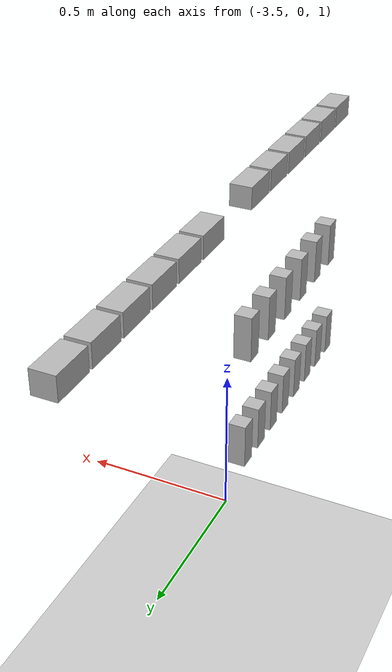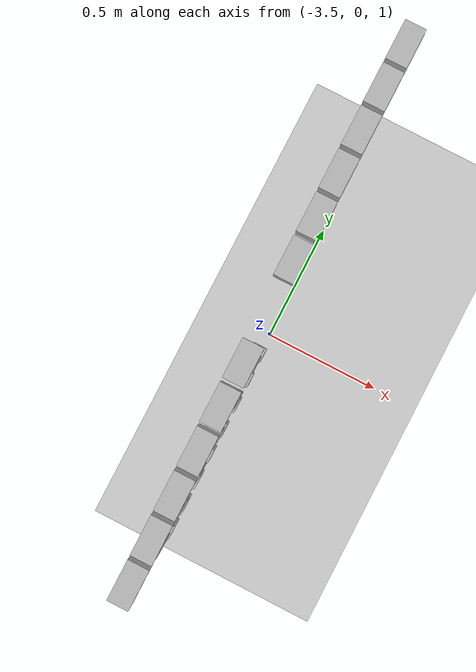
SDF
<sdf version="1.7">
 <world name="default">
  <model name="ground_plane">
   <static>1</static>
   <link name="link">
    <collision name="collision">
     <geometry><plane><normal>0 0 1</normal><size>100 100</size></plane></geometry>
     <surface>
      <contact><collide_bitmask>65535</collide_bitmask></contact>
      <friction><ode><mu>100</mu><mu2>50</mu2></ode></friction>
     </surface>
    </collision>
    <visual name="visual">
     <cast_shadows>0</cast_shadows>
     <geometry><plane><normal>0 0 1</normal><size>100 100</size></plane></geometry>
     <material>
      <script><uri>file://media/materials/scripts/gazebo.material</uri><name>Gazebo/Grey</name></script>
     </material>
    </visual>
   </link>
  </model>
  <model name="AH_shelf_filled_april">
   <static>1</static>
   <model name="board0">
    <pose>0 0.5 2.1 0 -0 0</pose>
    <static>0</static>
    <link name="AH_thee_mango_tag36_11_00030::link_0">
     <inertial>
      <mass>0.1</mass>
      <inertia><ixx>0.0014</ixx><ixy>0</ixy><ixz>0</ixz><iyy>0.0014</iyy><iyz>0</iyz><izz>0.0028</izz></inertia>
     </inertial>
     <pose>0.142857 0 0 0 -0 1.57</pose>
     <visual name="visual">
      <geometry>
       <mesh>
        <uri>model://AH_thee_mango/AH_thee_mango_tag36_11_00030/AH_thee_mango_tag36_11_00030.dae</uri>
        <scale>1 1 1</scale>
       </mesh>
      </geometry>
     </visual>
     <collision name="collision">
      <geometry>
       <mesh>
        <uri>model://AH_thee_mango/AH_thee_mango_tag36_11_00030/AH_thee_mango_tag36_11_00030.dae</uri>
        <scale>1 1 1</scale>
       </mesh>
      </geometry>
      <surface>
       <friction>
        <ode><mu>1</mu><mu2>1</mu2><fdir1>0 0 0</fdir1><slip1>0</slip1><slip2>0</slip2></ode>
        <torsional>
         <coefficient>1</coefficient>
         <patch_radius>0</patch_radius>
         <surface_radius>0</surface_radius>
         <use_patch_radius>1</use_patch_radius>
         <ode><slip>0</slip></ode>
        </torsional>
       </friction>
       <bounce><restitution_coefficient>0</restitution_coefficient><threshold>1e+06</threshold></bounce>
       <contact>
        <collide_without_contact>0</collide_without_contact>
        <collide_without_contact_bitmask>1</collide_without_contact_bitmask>
        <collide_bitmask>1</collide_bitmask>
        <ode>
         <soft_cfm>0</soft_cfm>
         <soft_erp>0.2</soft_erp>
         <kp>1e+13</kp>
         <kd>1</kd>
         <max_vel>0.01</max_vel>
         <min_depth>0</min_depth>
        </ode>
        <bullet>
         <split_impulse>1</split_impulse>
         <split_impulse_penetration_threshold>-0.01</split_impulse_penetration_threshold>
         <soft_cfm>0</soft_cfm>
         <soft_erp>0.2</soft_erp>
         <kp>1e+13</kp>
         <kd>1</kd>
        </bullet>
       </contact>
      </surface>
     </collision>
    </link>
    <static>0</static>
    <link name="AH_thee_mango_tag36_11_00031::link_0">
     <inertial>
      <mass>0.1</mass>
      <inertia><ixx>0.0014</ixx><ixy>0</ixy><ixz>0</ixz><iyy>0.0014</iyy><iyz>0</iyz><izz>0.0028</izz></inertia>
     </inertial>
     <pose>0.285714 0 0 0 -0 1.57</pose>
     <visual name="visual">
      <geometry>
       <mesh>
        <uri>model://AH_thee_mango/AH_thee_mango_tag36_11_00031/AH_thee_mango_tag36_11_00031.dae</uri>
        <scale>1 1 1</scale>
       </mesh>
      </geometry>
     </visual>
     <collision name="collision">
      <geometry>
       <mesh>
        <uri>model://AH_thee_mango/AH_thee_mango_tag36_11_00031/AH_thee_mango_tag36_11_00031.dae</uri>
        <scale>1 1 1</scale>
       </mesh>
      </geometry>
      <surface>
       <friction>
        <ode><mu>1</mu><mu2>1</mu2><fdir1>0 0 0</fdir1><slip1>0</slip1><slip2>0</slip2></ode>
        <torsional>
         <coefficient>1</coefficient>
         <patch_radius>0</patch_radius>
         <surface_radius>0</surface_radius>
         <use_patch_radius>1</use_patch_radius>
         <ode><slip>0</slip></ode>
        </torsional>
       </friction>
       <bounce><restitution_coefficient>0</restitution_coefficient><threshold>1e+06</threshold></bounce>
       <contact>
        <collide_without_contact>0</collide_without_contact>
        <collide_without_contact_bitmask>1</collide_without_contact_bitmask>
        <collide_bitmask>1</collide_bitmask>
        <ode>
         <soft_cfm>0</soft_cfm>
         <soft_erp>0.2</soft_erp>
         <kp>1e+13</kp>
         <kd>1</kd>
         <max_vel>0.01</max_vel>
         <min_depth>0</min_depth>
        </ode>
        <bullet>
         <split_impulse>1</split_impulse>
         <split_impulse_penetration_threshold>-0.01</split_impulse_penetration_threshold>
         <soft_cfm>0</soft_cfm>
         <soft_erp>0.2</soft_erp>
         <kp>1e+13</kp>
         <kd>1</kd>
        </bullet>
       </contact>
      </surface>
     </collision>
    </link>
    <static>0</static>
    <link name="AH_thee_mango_tag36_11_00032::link_0">
     <inertial>
      <mass>0.1</mass>
      <inertia><ixx>0.0014</ixx><ixy>0</ixy><ixz>0</ixz><iyy>0.0014</iyy><iyz>0</iyz><izz>0.0028</izz></inertia>
     </inertial>
     <pose>0.428571 0 0 0 -0 1.57</pose>
     <visual name="visual">
      <geometry>
       <mesh>
        <uri>model://AH_thee_mango/AH_thee_mango_tag36_11_00032/AH_thee_mango_tag36_11_00032.dae</uri>
        <scale>1 1 1</scale>
       </mesh>
      </geometry>
     </visual>
     <collision name="collision">
      <geometry>
       <mesh>
        <uri>model://AH_thee_mango/AH_thee_mango_tag36_11_00032/AH_thee_mango_tag36_11_00032.dae</uri>
        <scale>1 1 1</scale>
       </mesh>
      </geometry>
      <surface>
       <friction>
        <ode><mu>1</mu><mu2>1</mu2><fdir1>0 0 0</fdir1><slip1>0</slip1><slip2>0</slip2></ode>
        <torsional>
         <coefficient>1</coefficient>
         <patch_radius>0</patch_radius>
         <surface_radius>0</surface_radius>
         <use_patch_radius>1</use_patch_radius>
         <ode><slip>0</slip></ode>
        </torsional>
       </friction>
       <bounce><restitution_coefficient>0</restitution_coefficient><threshold>1e+06</threshold></bounce>
       <contact>
        <collide_without_contact>0</collide_without_contact>
        <collide_without_contact_bitmask>1</collide_without_contact_bitmask>
        <collide_bitmask>1</collide_bitmask>
        <ode>
         <soft_cfm>0</soft_cfm>
         <soft_erp>0.2</soft_erp>
         <kp>1e+13</kp>
         <kd>1</kd>
         <max_vel>0.01</max_vel>
         <min_depth>0</min_depth>
        </ode>
        <bullet>
         <split_impulse>1</split_impulse>
         <split_impulse_penetration_threshold>-0.01</split_impulse_penetration_threshold>
         <soft_cfm>0</soft_cfm>
         <soft_erp>0.2</soft_erp>
         <kp>1e+13</kp>
         <kd>1</kd>
        </bullet>
       </contact>
      </surface>
     </collision>
    </link>
    <static>0</static>
    <link name="AH_thee_mango_tag36_11_00033::link_0">
     <inertial>
      <mass>0.1</mass>
      <inertia><ixx>0.0014</ixx><ixy>0</ixy><ixz>0</ixz><iyy>0.0014</iyy><iyz>0</iyz><izz>0.0028</izz></inertia>
     </inertial>
     <pose>0.571429 0 0 0 -0 1.57</pose>
     <visual name="visual">
      <geometry>
       <mesh>
        <uri>model://AH_thee_mango/AH_thee_mango_tag36_11_00033/AH_thee_mango_tag36_11_00033.dae</uri>
        <scale>1 1 1</scale>
       </mesh>
      </geometry>
     </visual>
     <collision name="collision">
      <geometry>
       <mesh>
        <uri>model://AH_thee_mango/AH_thee_mango_tag36_11_00033/AH_thee_mango_tag36_11_00033.dae</uri>
        <scale>1 1 1</scale>
       </mesh>
      </geometry>
      <surface>
       <friction>
        <ode><mu>1</mu><mu2>1</mu2><fdir1>0 0 0</fdir1><slip1>0</slip1><slip2>0</slip2></ode>
        <torsional>
         <coefficient>1</coefficient>
         <patch_radius>0</patch_radius>
         <surface_radius>0</surface_radius>
         <use_patch_radius>1</use_patch_radius>
         <ode><slip>0</slip></ode>
        </torsional>
       </friction>
       <bounce><restitution_coefficient>0</restitution_coefficient><threshold>1e+06</threshold></bounce>
       <contact>
        <collide_without_contact>0</collide_without_contact>
        <collide_without_contact_bitmask>1</collide_without_contact_bitmask>
        <collide_bitmask>1</collide_bitmask>
        <ode>
         <soft_cfm>0</soft_cfm>
         <soft_erp>0.2</soft_erp>
         <kp>1e+13</kp>
         <kd>1</kd>
         <max_vel>0.01</max_vel>
         <min_depth>0</min_depth>
        </ode>
        <bullet>
         <split_impulse>1</split_impulse>
         <split_impulse_penetration_threshold>-0.01</split_impulse_penetration_threshold>
         <soft_cfm>0</soft_cfm>
         <soft_erp>0.2</soft_erp>
         <kp>1e+13</kp>
         <kd>1</kd>
        </bullet>
       </contact>
      </surface>
     </collision>
    </link>
    <static>0</static>
    <link name="AH_thee_mango_tag36_11_00034::link_0">
     <inertial>
      <mass>0.1</mass>
      <inertia><ixx>0.0014</ixx><ixy>0</ixy><ixz>0</ixz><iyy>0.0014</iyy><iyz>0</iyz><izz>0.0028</izz></inertia>
     </inertial>
     <pose>0.714286 0 0 0 -0 1.57</pose>
     <visual name="visual">
      <geometry>
       <mesh>
        <uri>model://AH_thee_mango/AH_thee_mango_tag36_11_00034/AH_thee_mango_tag36_11_00034.dae</uri>
        <scale>1 1 1</scale>
       </mesh>
      </geometry>
     </visual>
     <collision name="collision">
      <geometry>
       <mesh>
        <uri>model://AH_thee_mango/AH_thee_mango_tag36_11_00034/AH_thee_mango_tag36_11_00034.dae</uri>
        <scale>1 1 1</scale>
       </mesh>
      </geometry>
      <surface>
       <friction>
        <ode><mu>1</mu><mu2>1</mu2><fdir1>0 0 0</fdir1><slip1>0</slip1><slip2>0</slip2></ode>
        <torsional>
         <coefficient>1</coefficient>
         <patch_radius>0</patch_radius>
         <surface_radius>0</surface_radius>
         <use_patch_radius>1</use_patch_radius>
         <ode><slip>0</slip></ode>
        </torsional>
       </friction>
       <bounce><restitution_coefficient>0</restitution_coefficient><threshold>1e+06</threshold></bounce>
       <contact>
        <collide_without_contact>0</collide_without_contact>
        <collide_without_contact_bitmask>1</collide_without_contact_bitmask>
        <collide_bitmask>1</collide_bitmask>
        <ode>
         <soft_cfm>0</soft_cfm>
         <soft_erp>0.2</soft_erp>
         <kp>1e+13</kp>
         <kd>1</kd>
         <max_vel>0.01</max_vel>
         <min_depth>0</min_depth>
        </ode>
        <bullet>
         <split_impulse>1</split_impulse>
         <split_impulse_penetration_threshold>-0.01</split_impulse_penetration_threshold>
         <soft_cfm>0</soft_cfm>
         <soft_erp>0.2</soft_erp>
         <kp>1e+13</kp>
         <kd>1</kd>
        </bullet>
       </contact>
      </surface>
     </collision>
    </link>
    <static>0</static>
    <link name="AH_thee_mango_tag36_11_00035::link_0">
     <inertial>
      <mass>0.1</mass>
      <inertia><ixx>0.0014</ixx><ixy>0</ixy><ixz>0</ixz><iyy>0.0014</iyy><iyz>0</iyz><izz>0.0028</izz></inertia>
     </inertial>
     <pose>0.857143 0 0 0 -0 1.57</pose>
     <visual name="visual">
      <geometry>
       <mesh>
        <uri>model://AH_thee_mango/AH_thee_mango_tag36_11_00035/AH_thee_mango_tag36_11_00035.dae</uri>
        <scale>1 1 1</scale>
       </mesh>
      </geometry>
     </visual>
     <collision name="collision">
      <geometry>
       <mesh>
        <uri>model://AH_thee_mango/AH_thee_mango_tag36_11_00035/AH_thee_mango_tag36_11_00035.dae</uri>
        <scale>1 1 1</scale>
       </mesh>
      </geometry>
      <surface>
       <friction>
        <ode><mu>1</mu><mu2>1</mu2><fdir1>0 0 0</fdir1><slip1>0</slip1><slip2>0</slip2></ode>
        <torsional>
         <coefficient>1</coefficient>
         <patch_radius>0</patch_radius>
         <surface_radius>0</surface_radius>
         <use_patch_radius>1</use_patch_radius>
         <ode><slip>0</slip></ode>
        </torsional>
       </friction>
       <bounce><restitution_coefficient>0</restitution_coefficient><threshold>1e+06</threshold></bounce>
       <contact>
        <collide_without_contact>0</collide_without_contact>
        <collide_without_contact_bitmask>1</collide_without_contact_bitmask>
        <collide_bitmask>1</collide_bitmask>
        <ode>
         <soft_cfm>0</soft_cfm>
         <soft_erp>0.2</soft_erp>
         <kp>1e+13</kp>
         <kd>1</kd>
         <max_vel>0.01</max_vel>
         <min_depth>0</min_depth>
        </ode>
        <bullet>
         <split_impulse>1</split_impulse>
         <split_impulse_penetration_threshold>-0.01</split_impulse_penetration_threshold>
         <soft_cfm>0</soft_cfm>
         <soft_erp>0.2</soft_erp>
         <kp>1e+13</kp>
         <kd>1</kd>
        </bullet>
       </contact>
      </surface>
     </collision>
    </link>
   </model>
   <model name="board1">
    <pose>0 0.5 1.6 0 -0 0</pose>
    <static>0</static>
    <link name="AH_hagelslag_melk_tag36_11_00000::link_0">
     <inertial>
      <mass>0.1</mass>
      <inertia><ixx>0.0014</ixx><ixy>0</ixy><ixz>0</ixz><iyy>0.0014</iyy><iyz>0</iyz><izz>0.0028</izz></inertia>
     </inertial>
     <pose>0.142857 0 0 0 -0 1.57</pose>
     <visual name="visual">
      <geometry>
       <mesh>
        <uri>model://AH_hagelslag_melk/AH_hagelslag_melk_tag36_11_00000/AH_hagelslag_melk_tag36_11_00000.dae</uri>
        <scale>1 1 1</scale>
       </mesh>
      </geometry>
     </visual>
     <collision name="collision">
      <geometry>
       <mesh>
        <uri>model://AH_hagelslag_melk/AH_hagelslag_melk_tag36_11_00000/AH_hagelslag_melk_tag36_11_00000.dae</uri>
        <scale>1 1 1</scale>
       </mesh>
      </geometry>
      <surface>
       <friction>
        <ode><mu>1</mu><mu2>1</mu2><fdir1>0 0 0</fdir1><slip1>0</slip1><slip2>0</slip2></ode>
        <torsional>
         <coefficient>1</coefficient>
         <patch_radius>0</patch_radius>
         <surface_radius>0</surface_radius>
         <use_patch_radius>1</use_patch_radius>
         <ode><slip>0</slip></ode>
        </torsional>
       </friction>
       <bounce><restitution_coefficient>0</restitution_coefficient><threshold>1e+06</threshold></bounce>
       <contact>
        <collide_without_contact>0</collide_without_contact>
        <collide_without_contact_bitmask>1</collide_without_contact_bitmask>
        <collide_bitmask>1</collide_bitmask>
        <ode>
         <soft_cfm>0</soft_cfm>
         <soft_erp>0.2</soft_erp>
         <kp>1e+13</kp>
         <kd>1</kd>
         <max_vel>0.01</max_vel>
         <min_depth>0</min_depth>
        </ode>
        <bullet>
         <split_impulse>1</split_impulse>
         <split_impulse_penetration_threshold>-0.01</split_impulse_penetration_threshold>
         <soft_cfm>0</soft_cfm>
         <soft_erp>0.2</soft_erp>
         <kp>1e+13</kp>
         <kd>1</kd>
        </bullet>
       </contact>
      </surface>
     </collision>
    </link>
    <static>0</static>
    <link name="AH_hagelslag_melk_tag36_11_00001::link_0">
     <inertial>
      <mass>0.1</mass>
      <inertia><ixx>0.0014</ixx><ixy>0</ixy><ixz>0</ixz><iyy>0.0014</iyy><iyz>0</iyz><izz>0.0028</izz></inertia>
     </inertial>
     <pose>0.285714 0 0 0 -0 1.57</pose>
     <visual name="visual">
      <geometry>
       <mesh>
        <uri>model://AH_hagelslag_melk/AH_hagelslag_melk_tag36_11_00001/AH_hagelslag_melk_tag36_11_00001.dae</uri>
        <scale>1 1 1</scale>
       </mesh>
      </geometry>
     </visual>
     <collision name="collision">
      <geometry>
       <mesh>
        <uri>model://AH_hagelslag_melk/AH_hagelslag_melk_tag36_11_00001/AH_hagelslag_melk_tag36_11_00001.dae</uri>
        <scale>1 1 1</scale>
       </mesh>
      </geometry>
      <surface>
       <friction>
        <ode><mu>1</mu><mu2>1</mu2><fdir1>0 0 0</fdir1><slip1>0</slip1><slip2>0</slip2></ode>
        <torsional>
         <coefficient>1</coefficient>
         <patch_radius>0</patch_radius>
         <surface_radius>0</surface_radius>
         <use_patch_radius>1</use_patch_radius>
         <ode><slip>0</slip></ode>
        </torsional>
       </friction>
       <bounce><restitution_coefficient>0</restitution_coefficient><threshold>1e+06</threshold></bounce>
       <contact>
        <collide_without_contact>0</collide_without_contact>
        <collide_without_contact_bitmask>1</collide_without_contact_bitmask>
        <collide_bitmask>1</collide_bitmask>
        <ode>
         <soft_cfm>0</soft_cfm>
         <soft_erp>0.2</soft_erp>
         <kp>1e+13</kp>
         <kd>1</kd>
         <max_vel>0.01</max_vel>
         <min_depth>0</min_depth>
        </ode>
        <bullet>
         <split_impulse>1</split_impulse>
         <split_impulse_penetration_threshold>-0.01</split_impulse_penetration_threshold>
         <soft_cfm>0</soft_cfm>
         <soft_erp>0.2</soft_erp>
         <kp>1e+13</kp>
         <kd>1</kd>
        </bullet>
       </contact>
      </surface>
     </collision>
    </link>
    <static>0</static>
    <link name="AH_hagelslag_melk_tag36_11_00002::link_0">
     <inertial>
      <mass>0.1</mass>
      <inertia><ixx>0.0014</ixx><ixy>0</ixy><ixz>0</ixz><iyy>0.0014</iyy><iyz>0</iyz><izz>0.0028</izz></inertia>
     </inertial>
     <pose>0.428571 0 0 0 -0 1.57</pose>
     <visual name="visual">
      <geometry>
       <mesh>
        <uri>model://AH_hagelslag_melk/AH_hagelslag_melk_tag36_11_00002/AH_hagelslag_melk_tag36_11_00002.dae</uri>
        <scale>1 1 1</scale>
       </mesh>
      </geometry>
     </visual>
     <collision name="collision">
      <geometry>
       <mesh>
        <uri>model://AH_hagelslag_melk/AH_hagelslag_melk_tag36_11_00002/AH_hagelslag_melk_tag36_11_00002.dae</uri>
        <scale>1 1 1</scale>
       </mesh>
      </geometry>
      <surface>
       <friction>
        <ode><mu>1</mu><mu2>1</mu2><fdir1>0 0 0</fdir1><slip1>0</slip1><slip2>0</slip2></ode>
        <torsional>
         <coefficient>1</coefficient>
         <patch_radius>0</patch_radius>
         <surface_radius>0</surface_radius>
         <use_patch_radius>1</use_patch_radius>
         <ode><slip>0</slip></ode>
        </torsional>
       </friction>
       <bounce><restitution_coefficient>0</restitution_coefficient><threshold>1e+06</threshold></bounce>
       <contact>
        <collide_without_contact>0</collide_without_contact>
        <collide_without_contact_bitmask>1</collide_without_contact_bitmask>
        <collide_bitmask>1</collide_bitmask>
        <ode>
         <soft_cfm>0</soft_cfm>
         <soft_erp>0.2</soft_erp>
         <kp>1e+13</kp>
         <kd>1</kd>
         <max_vel>0.01</max_vel>
         <min_depth>0</min_depth>
        </ode>
        <bullet>
         <split_impulse>1</split_impulse>
         <split_impulse_penetration_threshold>-0.01</split_impulse_penetration_threshold>
         <soft_cfm>0</soft_cfm>
         <soft_erp>0.2</soft_erp>
         <kp>1e+13</kp>
         <kd>1</kd>
        </bullet>
       </contact>
      </surface>
     </collision>
    </link>
    <static>0</static>
    <link name="AH_hagelslag_melk_tag36_11_00003::link_0">
     <inertial>
      <mass>0.1</mass>
      <inertia><ixx>0.0014</ixx><ixy>0</ixy><ixz>0</ixz><iyy>0.0014</iyy><iyz>0</iyz><izz>0.0028</izz></inertia>
     </inertial>
     <pose>0.571429 0 0 0 -0 1.57</pose>
     <visual name="visual">
      <geometry>
       <mesh>
        <uri>model://AH_hagelslag_melk/AH_hagelslag_melk_tag36_11_00003/AH_hagelslag_melk_tag36_11_00003.dae</uri>
        <scale>1 1 1</scale>
       </mesh>
      </geometry>
     </visual>
     <collision name="collision">
      <geometry>
       <mesh>
        <uri>model://AH_hagelslag_melk/AH_hagelslag_melk_tag36_11_00003/AH_hagelslag_melk_tag36_11_00003.dae</uri>
        <scale>1 1 1</scale>
       </mesh>
      </geometry>
      <surface>
       <friction>
        <ode><mu>1</mu><mu2>1</mu2><fdir1>0 0 0</fdir1><slip1>0</slip1><slip2>0</slip2></ode>
        <torsional>
         <coefficient>1</coefficient>
         <patch_radius>0</patch_radius>
         <surface_radius>0</surface_radius>
         <use_patch_radius>1</use_patch_radius>
         <ode><slip>0</slip></ode>
        </torsional>
       </friction>
       <bounce><restitution_coefficient>0</restitution_coefficient><threshold>1e+06</threshold></bounce>
       <contact>
        <collide_without_contact>0</collide_without_contact>
        <collide_without_contact_bitmask>1</collide_without_contact_bitmask>
        <collide_bitmask>1</collide_bitmask>
        <ode>
         <soft_cfm>0</soft_cfm>
         <soft_erp>0.2</soft_erp>
         <kp>1e+13</kp>
         <kd>1</kd>
         <max_vel>0.01</max_vel>
         <min_depth>0</min_depth>
        </ode>
        <bullet>
         <split_impulse>1</split_impulse>
         <split_impulse_penetration_threshold>-0.01</split_impulse_penetration_threshold>
         <soft_cfm>0</soft_cfm>
         <soft_erp>0.2</soft_erp>
         <kp>1e+13</kp>
         <kd>1</kd>
        </bullet>
       </contact>
      </surface>
     </collision>
    </link>
    <static>0</static>
    <link name="AH_hagelslag_melk_tag36_11_00004::link_0">
     <inertial>
      <mass>0.1</mass>
      <inertia><ixx>0.0014</ixx><ixy>0</ixy><ixz>0</ixz><iyy>0.0014</iyy><iyz>0</iyz><izz>0.0028</izz></inertia>
     </inertial>
     <pose>0.714286 0 0 0 -0 1.57</pose>
     <visual name="visual">
      <geometry>
       <mesh>
        <uri>model://AH_hagelslag_melk/AH_hagelslag_melk_tag36_11_00004/AH_hagelslag_melk_tag36_11_00004.dae</uri>
        <scale>1 1 1</scale>
       </mesh>
      </geometry>
     </visual>
     <collision name="collision">
      <geometry>
       <mesh>
        <uri>model://AH_hagelslag_melk/AH_hagelslag_melk_tag36_11_00004/AH_hagelslag_melk_tag36_11_00004.dae</uri>
        <scale>1 1 1</scale>
       </mesh>
      </geometry>
      <surface>
       <friction>
        <ode><mu>1</mu><mu2>1</mu2><fdir1>0 0 0</fdir1><slip1>0</slip1><slip2>0</slip2></ode>
        <torsional>
         <coefficient>1</coefficient>
         <patch_radius>0</patch_radius>
         <surface_radius>0</surface_radius>
         <use_patch_radius>1</use_patch_radius>
         <ode><slip>0</slip></ode>
        </torsional>
       </friction>
       <bounce><restitution_coefficient>0</restitution_coefficient><threshold>1e+06</threshold></bounce>
       <contact>
        <collide_without_contact>0</collide_without_contact>
        <collide_without_contact_bitmask>1</collide_without_contact_bitmask>
        <collide_bitmask>1</collide_bitmask>
        <ode>
         <soft_cfm>0</soft_cfm>
         <soft_erp>0.2</soft_erp>
         <kp>1e+13</kp>
         <kd>1</kd>
         <max_vel>0.01</max_vel>
         <min_depth>0</min_depth>
        </ode>
        <bullet>
         <split_impulse>1</split_impulse>
         <split_impulse_penetration_threshold>-0.01</split_impulse_penetration_threshold>
         <soft_cfm>0</soft_cfm>
         <soft_erp>0.2</soft_erp>
         <kp>1e+13</kp>
         <kd>1</kd>
        </bullet>
       </contact>
      </surface>
     </collision>
    </link>
    <static>0</static>
    <link name="AH_hagelslag_melk_tag36_11_00005::link_0">
     <inertial>
      <mass>0.1</mass>
      <inertia><ixx>0.0014</ixx><ixy>0</ixy><ixz>0</ixz><iyy>0.0014</iyy><iyz>0</iyz><izz>0.0028</izz></inertia>
     </inertial>
     <pose>0.857143 0 0 0 -0 1.57</pose>
     <visual name="visual">
      <geometry>
       <mesh>
        <uri>model://AH_hagelslag_melk/AH_hagelslag_melk_tag36_11_00005/AH_hagelslag_melk_tag36_11_00005.dae</uri>
        <scale>1 1 1</scale>
       </mesh>
      </geometry>
     </visual>
     <collision name="collision">
      <geometry>
       <mesh>
        <uri>model://AH_hagelslag_melk/AH_hagelslag_melk_tag36_11_00005/AH_hagelslag_melk_tag36_11_00005.dae</uri>
        <scale>1 1 1</scale>
       </mesh>
      </geometry>
      <surface>
       <friction>
        <ode><mu>1</mu><mu2>1</mu2><fdir1>0 0 0</fdir1><slip1>0</slip1><slip2>0</slip2></ode>
        <torsional>
         <coefficient>1</coefficient>
         <patch_radius>0</patch_radius>
         <surface_radius>0</surface_radius>
         <use_patch_radius>1</use_patch_radius>
         <ode><slip>0</slip></ode>
        </torsional>
       </friction>
       <bounce><restitution_coefficient>0</restitution_coefficient><threshold>1e+06</threshold></bounce>
       <contact>
        <collide_without_contact>0</collide_without_contact>
        <collide_without_contact_bitmask>1</collide_without_contact_bitmask>
        <collide_bitmask>1</collide_bitmask>
        <ode>
         <soft_cfm>0</soft_cfm>
         <soft_erp>0.2</soft_erp>
         <kp>1e+13</kp>
         <kd>1</kd>
         <max_vel>0.01</max_vel>
         <min_depth>0</min_depth>
        </ode>
        <bullet>
         <split_impulse>1</split_impulse>
         <split_impulse_penetration_threshold>-0.01</split_impulse_penetration_threshold>
         <soft_cfm>0</soft_cfm>
         <soft_erp>0.2</soft_erp>
         <kp>1e+13</kp>
         <kd>1</kd>
        </bullet>
       </contact>
      </surface>
     </collision>
    </link>
   </model>
   <model name="board2">
    <pose>0 0.5 1.2 0 -0 0</pose>
    <static>0</static>
    <link name="AH_hagelslag_puur_tag36_11_00015::link_0">
     <inertial>
      <mass>0.1</mass>
      <inertia><ixx>0.0014</ixx><ixy>0</ixy><ixz>0</ixz><iyy>0.0014</iyy><iyz>0</iyz><izz>0.0028</izz></inertia>
     </inertial>
     <pose>0.111111 0 0 0 -0 1.57</pose>
     <visual name="visual">
      <geometry>
       <mesh>
        <uri>model://AH_hagelslag_puur/AH_hagelslag_puur_tag36_11_00015/AH_hagelslag_puur_tag36_11_00015.dae</uri>
        <scale>1 1 1</scale>
       </mesh>
      </geometry>
     </visual>
     <collision name="collision">
      <geometry>
       <mesh>
        <uri>model://AH_hagelslag_puur/AH_hagelslag_puur_tag36_11_00015/AH_hagelslag_puur_tag36_11_00015.dae</uri>
        <scale>1 1 1</scale>
       </mesh>
      </geometry>
      <surface>
       <friction>
        <ode><mu>1</mu><mu2>1</mu2><fdir1>0 0 0</fdir1><slip1>0</slip1><slip2>0</slip2></ode>
        <torsional>
         <coefficient>1</coefficient>
         <patch_radius>0</patch_radius>
         <surface_radius>0</surface_radius>
         <use_patch_radius>1</use_patch_radius>
         <ode><slip>0</slip></ode>
        </torsional>
       </friction>
       <bounce><restitution_coefficient>0</restitution_coefficient><threshold>1e+06</threshold></bounce>
       <contact>
        <collide_without_contact>0</collide_without_contact>
        <collide_without_contact_bitmask>1</collide_without_contact_bitmask>
        <collide_bitmask>1</collide_bitmask>
        <ode>
         <soft_cfm>0</soft_cfm>
         <soft_erp>0.2</soft_erp>
         <kp>1e+13</kp>
         <kd>1</kd>
         <max_vel>0.01</max_vel>
         <min_depth>0</min_depth>
        </ode>
        <bullet>
         <split_impulse>1</split_impulse>
         <split_impulse_penetration_threshold>-0.01</split_impulse_penetration_threshold>
         <soft_cfm>0</soft_cfm>
         <soft_erp>0.2</soft_erp>
         <kp>1e+13</kp>
         <kd>1</kd>
        </bullet>
       </contact>
      </surface>
     </collision>
    </link>
    <static>0</static>
    <link name="AH_hagelslag_puur_tag36_11_00016::link_0">
     <inertial>
      <mass>0.1</mass>
      <inertia><ixx>0.0014</ixx><ixy>0</ixy><ixz>0</ixz><iyy>0.0014</iyy><iyz>0</iyz><izz>0.0028</izz></inertia>
     </inertial>
     <pose>0.222222 0 0 0 -0 1.57</pose>
     <visual name="visual">
      <geometry>
       <mesh>
        <uri>model://AH_hagelslag_puur/AH_hagelslag_puur_tag36_11_00016/AH_hagelslag_puur_tag36_11_00016.dae</uri>
        <scale>1 1 1</scale>
       </mesh>
      </geometry>
     </visual>
     <collision name="collision">
      <geometry>
       <mesh>
        <uri>model://AH_hagelslag_puur/AH_hagelslag_puur_tag36_11_00016/AH_hagelslag_puur_tag36_11_00016.dae</uri>
        <scale>1 1 1</scale>
       </mesh>
      </geometry>
      <surface>
       <friction>
        <ode><mu>1</mu><mu2>1</mu2><fdir1>0 0 0</fdir1><slip1>0</slip1><slip2>0</slip2></ode>
        <torsional>
         <coefficient>1</coefficient>
         <patch_radius>0</patch_radius>
         <surface_radius>0</surface_radius>
         <use_patch_radius>1</use_patch_radius>
         <ode><slip>0</slip></ode>
        </torsional>
       </friction>
       <bounce><restitution_coefficient>0</restitution_coefficient><threshold>1e+06</threshold></bounce>
       <contact>
        <collide_without_contact>0</collide_without_contact>
        <collide_without_contact_bitmask>1</collide_without_contact_bitmask>
        <collide_bitmask>1</collide_bitmask>
        <ode>
         <soft_cfm>0</soft_cfm>
         <soft_erp>0.2</soft_erp>
         <kp>1e+13</kp>
         <kd>1</kd>
         <max_vel>0.01</max_vel>
         <min_depth>0</min_depth>
        </ode>
        <bullet>
         <split_impulse>1</split_impulse>
         <split_impulse_penetration_threshold>-0.01</split_impulse_penetration_threshold>
         <soft_cfm>0</soft_cfm>
         <soft_erp>0.2</soft_erp>
         <kp>1e+13</kp>
         <kd>1</kd>
        </bullet>
       </contact>
      </surface>
     </collision>
    </link>
    <static>0</static>
    <link name="AH_hagelslag_puur_tag36_11_00017::link_0">
     <inertial>
      <mass>0.1</mass>
      <inertia><ixx>0.0014</ixx><ixy>0</ixy><ixz>0</ixz><iyy>0.0014</iyy><iyz>0</iyz><izz>0.0028</izz></inertia>
     </inertial>
     <pose>0.333333 0 0 0 -0 1.57</pose>
     <visual name="visual">
      <geometry>
       <mesh>
        <uri>model://AH_hagelslag_puur/AH_hagelslag_puur_tag36_11_00017/AH_hagelslag_puur_tag36_11_00017.dae</uri>
        <scale>1 1 1</scale>
       </mesh>
      </geometry>
     </visual>
     <collision name="collision">
      <geometry>
       <mesh>
        <uri>model://AH_hagelslag_puur/AH_hagelslag_puur_tag36_11_00017/AH_hagelslag_puur_tag36_11_00017.dae</uri>
        <scale>1 1 1</scale>
       </mesh>
      </geometry>
      <surface>
       <friction>
        <ode><mu>1</mu><mu2>1</mu2><fdir1>0 0 0</fdir1><slip1>0</slip1><slip2>0</slip2></ode>
        <torsional>
         <coefficient>1</coefficient>
         <patch_radius>0</patch_radius>
         <surface_radius>0</surface_radius>
         <use_patch_radius>1</use_patch_radius>
         <ode><slip>0</slip></ode>
        </torsional>
       </friction>
       <bounce><restitution_coefficient>0</restitution_coefficient><threshold>1e+06</threshold></bounce>
       <contact>
        <collide_without_contact>0</collide_without_contact>
        <collide_without_contact_bitmask>1</collide_without_contact_bitmask>
        <collide_bitmask>1</collide_bitmask>
        <ode>
         <soft_cfm>0</soft_cfm>
         <soft_erp>0.2</soft_erp>
         <kp>1e+13</kp>
         <kd>1</kd>
         <max_vel>0.01</max_vel>
         <min_depth>0</min_depth>
        </ode>
        <bullet>
         <split_impulse>1</split_impulse>
         <split_impulse_penetration_threshold>-0.01</split_impulse_penetration_threshold>
         <soft_cfm>0</soft_cfm>
         <soft_erp>0.2</soft_erp>
         <kp>1e+13</kp>
         <kd>1</kd>
        </bullet>
       </contact>
      </surface>
     </collision>
    </link>
    <static>0</static>
    <link name="AH_hagelslag_puur_tag36_11_00018::link_0">
     <inertial>
      <mass>0.1</mass>
      <inertia><ixx>0.0014</ixx><ixy>0</ixy><ixz>0</ixz><iyy>0.0014</iyy><iyz>0</iyz><izz>0.0028</izz></inertia>
     </inertial>
     <pose>0.444444 0 0 0 -0 1.57</pose>
     <visual name="visual">
      <geometry>
       <mesh>
        <uri>model://AH_hagelslag_puur/AH_hagelslag_puur_tag36_11_00018/AH_hagelslag_puur_tag36_11_00018.dae</uri>
        <scale>1 1 1</scale>
       </mesh>
      </geometry>
     </visual>
     <collision name="collision">
      <geometry>
       <mesh>
        <uri>model://AH_hagelslag_puur/AH_hagelslag_puur_tag36_11_00018/AH_hagelslag_puur_tag36_11_00018.dae</uri>
        <scale>1 1 1</scale>
       </mesh>
      </geometry>
      <surface>
       <friction>
        <ode><mu>1</mu><mu2>1</mu2><fdir1>0 0 0</fdir1><slip1>0</slip1><slip2>0</slip2></ode>
        <torsional>
         <coefficient>1</coefficient>
         <patch_radius>0</patch_radius>
         <surface_radius>0</surface_radius>
         <use_patch_radius>1</use_patch_radius>
         <ode><slip>0</slip></ode>
        </torsional>
       </friction>
       <bounce><restitution_coefficient>0</restitution_coefficient><threshold>1e+06</threshold></bounce>
       <contact>
        <collide_without_contact>0</collide_without_contact>
        <collide_without_contact_bitmask>1</collide_without_contact_bitmask>
        <collide_bitmask>1</collide_bitmask>
        <ode>
         <soft_cfm>0</soft_cfm>
         <soft_erp>0.2</soft_erp>
         <kp>1e+13</kp>
         <kd>1</kd>
         <max_vel>0.01</max_vel>
         <min_depth>0</min_depth>
        </ode>
        <bullet>
         <split_impulse>1</split_impulse>
         <split_impulse_penetration_threshold>-0.01</split_impulse_penetration_threshold>
         <soft_cfm>0</soft_cfm>
         <soft_erp>0.2</soft_erp>
         <kp>1e+13</kp>
         <kd>1</kd>
        </bullet>
       </contact>
      </surface>
     </collision>
    </link>
    <static>0</static>
    <link name="AH_hagelslag_puur_tag36_11_00019::link_0">
     <inertial>
      <mass>0.1</mass>
      <inertia><ixx>0.0014</ixx><ixy>0</ixy><ixz>0</ixz><iyy>0.0014</iyy><iyz>0</iyz><izz>0.0028</izz></inertia>
     </inertial>
     <pose>0.555556 0 0 0 -0 1.57</pose>
     <visual name="visual">
      <geometry>
       <mesh>
        <uri>model://AH_hagelslag_puur/AH_hagelslag_puur_tag36_11_00019/AH_hagelslag_puur_tag36_11_00019.dae</uri>
        <scale>1 1 1</scale>
       </mesh>
      </geometry>
     </visual>
     <collision name="collision">
      <geometry>
       <mesh>
        <uri>model://AH_hagelslag_puur/AH_hagelslag_puur_tag36_11_00019/AH_hagelslag_puur_tag36_11_00019.dae</uri>
        <scale>1 1 1</scale>
       </mesh>
      </geometry>
      <surface>
       <friction>
        <ode><mu>1</mu><mu2>1</mu2><fdir1>0 0 0</fdir1><slip1>0</slip1><slip2>0</slip2></ode>
        <torsional>
         <coefficient>1</coefficient>
         <patch_radius>0</patch_radius>
         <surface_radius>0</surface_radius>
         <use_patch_radius>1</use_patch_radius>
         <ode><slip>0</slip></ode>
        </torsional>
       </friction>
       <bounce><restitution_coefficient>0</restitution_coefficient><threshold>1e+06</threshold></bounce>
       <contact>
        <collide_without_contact>0</collide_without_contact>
        <collide_without_contact_bitmask>1</collide_without_contact_bitmask>
        <collide_bitmask>1</collide_bitmask>
        <ode>
         <soft_cfm>0</soft_cfm>
         <soft_erp>0.2</soft_erp>
         <kp>1e+13</kp>
         <kd>1</kd>
         <max_vel>0.01</max_vel>
         <min_depth>0</min_depth>
        </ode>
        <bullet>
         <split_impulse>1</split_impulse>
         <split_impulse_penetration_threshold>-0.01</split_impulse_penetration_threshold>
         <soft_cfm>0</soft_cfm>
         <soft_erp>0.2</soft_erp>
         <kp>1e+13</kp>
         <kd>1</kd>
        </bullet>
       </contact>
      </surface>
     </collision>
    </link>
    <static>0</static>
    <link name="AH_hagelslag_puur_tag36_11_00020::link_0">
     <inertial>
      <mass>0.1</mass>
      <inertia><ixx>0.0014</ixx><ixy>0</ixy><ixz>0</ixz><iyy>0.0014</iyy><iyz>0</iyz><izz>0.0028</izz></inertia>
     </inertial>
     <pose>0.666667 0 0 0 -0 1.57</pose>
     <visual name="visual">
      <geometry>
       <mesh>
        <uri>model://AH_hagelslag_puur/AH_hagelslag_puur_tag36_11_00020/AH_hagelslag_puur_tag36_11_00020.dae</uri>
        <scale>1 1 1</scale>
       </mesh>
      </geometry>
     </visual>
     <collision name="collision">
      <geometry>
       <mesh>
        <uri>model://AH_hagelslag_puur/AH_hagelslag_puur_tag36_11_00020/AH_hagelslag_puur_tag36_11_00020.dae</uri>
        <scale>1 1 1</scale>
       </mesh>
      </geometry>
      <surface>
       <friction>
        <ode><mu>1</mu><mu2>1</mu2><fdir1>0 0 0</fdir1><slip1>0</slip1><slip2>0</slip2></ode>
        <torsional>
         <coefficient>1</coefficient>
         <patch_radius>0</patch_radius>
         <surface_radius>0</surface_radius>
         <use_patch_radius>1</use_patch_radius>
         <ode><slip>0</slip></ode>
        </torsional>
       </friction>
       <bounce><restitution_coefficient>0</restitution_coefficient><threshold>1e+06</threshold></bounce>
       <contact>
        <collide_without_contact>0</collide_without_contact>
        <collide_without_contact_bitmask>1</collide_without_contact_bitmask>
        <collide_bitmask>1</collide_bitmask>
        <ode>
         <soft_cfm>0</soft_cfm>
         <soft_erp>0.2</soft_erp>
         <kp>1e+13</kp>
         <kd>1</kd>
         <max_vel>0.01</max_vel>
         <min_depth>0</min_depth>
        </ode>
        <bullet>
         <split_impulse>1</split_impulse>
         <split_impulse_penetration_threshold>-0.01</split_impulse_penetration_threshold>
         <soft_cfm>0</soft_cfm>
         <soft_erp>0.2</soft_erp>
         <kp>1e+13</kp>
         <kd>1</kd>
        </bullet>
       </contact>
      </surface>
     </collision>
    </link>
    <static>0</static>
    <link name="AH_hagelslag_puur_tag36_11_00021::link_0">
     <inertial>
      <mass>0.1</mass>
      <inertia><ixx>0.0014</ixx><ixy>0</ixy><ixz>0</ixz><iyy>0.0014</iyy><iyz>0</iyz><izz>0.0028</izz></inertia>
     </inertial>
     <pose>0.777778 0 0 0 -0 1.57</pose>
     <visual name="visual">
      <geometry>
       <mesh>
        <uri>model://AH_hagelslag_puur/AH_hagelslag_puur_tag36_11_00021/AH_hagelslag_puur_tag36_11_00021.dae</uri>
        <scale>1 1 1</scale>
       </mesh>
      </geometry>
     </visual>
     <collision name="collision">
      <geometry>
       <mesh>
        <uri>model://AH_hagelslag_puur/AH_hagelslag_puur_tag36_11_00021/AH_hagelslag_puur_tag36_11_00021.dae</uri>
        <scale>1 1 1</scale>
       </mesh>
      </geometry>
      <surface>
       <friction>
        <ode><mu>1</mu><mu2>1</mu2><fdir1>0 0 0</fdir1><slip1>0</slip1><slip2>0</slip2></ode>
        <torsional>
         <coefficient>1</coefficient>
         <patch_radius>0</patch_radius>
         <surface_radius>0</surface_radius>
         <use_patch_radius>1</use_patch_radius>
         <ode><slip>0</slip></ode>
        </torsional>
       </friction>
       <bounce><restitution_coefficient>0</restitution_coefficient><threshold>1e+06</threshold></bounce>
       <contact>
        <collide_without_contact>0</collide_without_contact>
        <collide_without_contact_bitmask>1</collide_without_contact_bitmask>
        <collide_bitmask>1</collide_bitmask>
        <ode>
         <soft_cfm>0</soft_cfm>
         <soft_erp>0.2</soft_erp>
         <kp>1e+13</kp>
         <kd>1</kd>
         <max_vel>0.01</max_vel>
         <min_depth>0</min_depth>
        </ode>
        <bullet>
         <split_impulse>1</split_impulse>
         <split_impulse_penetration_threshold>-0.01</split_impulse_penetration_threshold>
         <soft_cfm>0</soft_cfm>
         <soft_erp>0.2</soft_erp>
         <kp>1e+13</kp>
         <kd>1</kd>
        </bullet>
       </contact>
      </surface>
     </collision>
    </link>
    <static>0</static>
    <link name="AH_hagelslag_puur_tag36_11_00022::link_0">
     <inertial>
      <mass>0.1</mass>
      <inertia><ixx>0.0014</ixx><ixy>0</ixy><ixz>0</ixz><iyy>0.0014</iyy><iyz>0</iyz><izz>0.0028</izz></inertia>
     </inertial>
     <pose>0.888889 0 0 0 -0 1.57</pose>
     <visual name="visual">
      <geometry>
       <mesh>
        <uri>model://AH_hagelslag_puur/AH_hagelslag_puur_tag36_11_00022/AH_hagelslag_puur_tag36_11_00022.dae</uri>
        <scale>1 1 1</scale>
       </mesh>
      </geometry>
     </visual>
     <collision name="collision">
      <geometry>
       <mesh>
        <uri>model://AH_hagelslag_puur/AH_hagelslag_puur_tag36_11_00022/AH_hagelslag_puur_tag36_11_00022.dae</uri>
        <scale>1 1 1</scale>
       </mesh>
      </geometry>
      <surface>
       <friction>
        <ode><mu>1</mu><mu2>1</mu2><fdir1>0 0 0</fdir1><slip1>0</slip1><slip2>0</slip2></ode>
        <torsional>
         <coefficient>1</coefficient>
         <patch_radius>0</patch_radius>
         <surface_radius>0</surface_radius>
         <use_patch_radius>1</use_patch_radius>
         <ode><slip>0</slip></ode>
        </torsional>
       </friction>
       <bounce><restitution_coefficient>0</restitution_coefficient><threshold>1e+06</threshold></bounce>
       <contact>
        <collide_without_contact>0</collide_without_contact>
        <collide_without_contact_bitmask>1</collide_without_contact_bitmask>
        <collide_bitmask>1</collide_bitmask>
        <ode>
         <soft_cfm>0</soft_cfm>
         <soft_erp>0.2</soft_erp>
         <kp>1e+13</kp>
         <kd>1</kd>
         <max_vel>0.01</max_vel>
         <min_depth>0</min_depth>
        </ode>
        <bullet>
         <split_impulse>1</split_impulse>
         <split_impulse_penetration_threshold>-0.01</split_impulse_penetration_threshold>
         <soft_cfm>0</soft_cfm>
         <soft_erp>0.2</soft_erp>
         <kp>1e+13</kp>
         <kd>1</kd>
        </bullet>
       </contact>
      </surface>
     </collision>
    </link>
   </model>
   <pose>-4.01107 0.02378 0 0 0 -1.5708</pose>
  </model>
  <model name="AH_shelf_filled_0">
   <static>1</static>
   <model name="board6">
    <pose>0 0.5 2.1 0 -0 0</pose>
    <static>0</static>
    <link name="AH_thee_mango::link_0">
     <inertial>
      <mass>0.1</mass>
      <inertia><ixx>0.0014</ixx><ixy>0</ixy><ixz>0</ixz><iyy>0.0014</iyy><iyz>0</iyz><izz>0.0028</izz></inertia>
     </inertial>
     <pose>0.142857 0 0 0 -0 1.57</pose>
     <visual name="visual">
      <geometry>
       <mesh><uri>model://AH_thee_mango/AH_thee_mango/AH_thee_mango.dae</uri><scale>1 1 1</scale></mesh>
      </geometry>
     </visual>
     <collision name="collision">
      <geometry>
       <mesh><uri>model://AH_thee_mango/AH_thee_mango/AH_thee_mango.dae</uri><scale>1 1 1</scale></mesh>
      </geometry>
      <surface>
       <friction>
        <ode><mu>1</mu><mu2>1</mu2><fdir1>0 0 0</fdir1><slip1>0</slip1><slip2>0</slip2></ode>
        <torsional>
         <coefficient>1</coefficient>
         <patch_radius>0</patch_radius>
         <surface_radius>0</surface_radius>
         <use_patch_radius>1</use_patch_radius>
         <ode><slip>0</slip></ode>
        </torsional>
       </friction>
       <bounce><restitution_coefficient>0</restitution_coefficient><threshold>1e+06</threshold></bounce>
       <contact>
        <collide_without_contact>0</collide_without_contact>
        <collide_without_contact_bitmask>1</collide_without_contact_bitmask>
        <collide_bitmask>1</collide_bitmask>
        <ode>
         <soft_cfm>0</soft_cfm>
         <soft_erp>0.2</soft_erp>
         <kp>1e+13</kp>
         <kd>1</kd>
         <max_vel>0.01</max_vel>
         <min_depth>0</min_depth>
        </ode>
        <bullet>
         <split_impulse>1</split_impulse>
         <split_impulse_penetration_threshold>-0.01</split_impulse_penetration_threshold>
         <soft_cfm>0</soft_cfm>
         <soft_erp>0.2</soft_erp>
         <kp>1e+13</kp>
         <kd>1</kd>
        </bullet>
       </contact>
      </surface>
     </collision>
    </link>
    <static>0</static>
    <link name="AH_thee_mango::link_0">
     <inertial>
      <mass>0.1</mass>
      <inertia><ixx>0.0014</ixx><ixy>0</ixy><ixz>0</ixz><iyy>0.0014</iyy><iyz>0</iyz><izz>0.0028</izz></inertia>
     </inertial>
     <pose>0.285714 0 0 0 -0 1.57</pose>
     <visual name="visual">
      <geometry>
       <mesh><uri>model://AH_thee_mango/AH_thee_mango/AH_thee_mango.dae</uri><scale>1 1 1</scale></mesh>
      </geometry>
     </visual>
     <collision name="collision">
      <geometry>
       <mesh><uri>model://AH_thee_mango/AH_thee_mango/AH_thee_mango.dae</uri><scale>1 1 1</scale></mesh>
      </geometry>
      <surface>
       <friction>
        <ode><mu>1</mu><mu2>1</mu2><fdir1>0 0 0</fdir1><slip1>0</slip1><slip2>0</slip2></ode>
        <torsional>
         <coefficient>1</coefficient>
         <patch_radius>0</patch_radius>
         <surface_radius>0</surface_radius>
         <use_patch_radius>1</use_patch_radius>
         <ode><slip>0</slip></ode>
        </torsional>
       </friction>
       <bounce><restitution_coefficient>0</restitution_coefficient><threshold>1e+06</threshold></bounce>
       <contact>
        <collide_without_contact>0</collide_without_contact>
        <collide_without_contact_bitmask>1</collide_without_contact_bitmask>
        <collide_bitmask>1</collide_bitmask>
        <ode>
         <soft_cfm>0</soft_cfm>
         <soft_erp>0.2</soft_erp>
         <kp>1e+13</kp>
         <kd>1</kd>
         <max_vel>0.01</max_vel>
         <min_depth>0</min_depth>
        </ode>
        <bullet>
         <split_impulse>1</split_impulse>
         <split_impulse_penetration_threshold>-0.01</split_impulse_penetration_threshold>
         <soft_cfm>0</soft_cfm>
         <soft_erp>0.2</soft_erp>
         <kp>1e+13</kp>
         <kd>1</kd>
        </bullet>
       </contact>
      </surface>
     </collision>
    </link>
    <static>0</static>
    <link name="AH_thee_mango::link_0">
     <inertial>
      <mass>0.1</mass>
      <inertia><ixx>0.0014</ixx><ixy>0</ixy><ixz>0</ixz><iyy>0.0014</iyy><iyz>0</iyz><izz>0.0028</izz></inertia>
     </inertial>
     <pose>0.428571 0 0 0 -0 1.57</pose>
     <visual name="visual">
      <geometry>
       <mesh><uri>model://AH_thee_mango/AH_thee_mango/AH_thee_mango.dae</uri><scale>1 1 1</scale></mesh>
      </geometry>
     </visual>
     <collision name="collision">
      <geometry>
       <mesh><uri>model://AH_thee_mango/AH_thee_mango/AH_thee_mango.dae</uri><scale>1 1 1</scale></mesh>
      </geometry>
      <surface>
       <friction>
        <ode><mu>1</mu><mu2>1</mu2><fdir1>0 0 0</fdir1><slip1>0</slip1><slip2>0</slip2></ode>
        <torsional>
         <coefficient>1</coefficient>
         <patch_radius>0</patch_radius>
         <surface_radius>0</surface_radius>
         <use_patch_radius>1</use_patch_radius>
         <ode><slip>0</slip></ode>
        </torsional>
       </friction>
       <bounce><restitution_coefficient>0</restitution_coefficient><threshold>1e+06</threshold></bounce>
       <contact>
        <collide_without_contact>0</collide_without_contact>
        <collide_without_contact_bitmask>1</collide_without_contact_bitmask>
        <collide_bitmask>1</collide_bitmask>
        <ode>
         <soft_cfm>0</soft_cfm>
         <soft_erp>0.2</soft_erp>
         <kp>1e+13</kp>
         <kd>1</kd>
         <max_vel>0.01</max_vel>
         <min_depth>0</min_depth>
        </ode>
        <bullet>
         <split_impulse>1</split_impulse>
         <split_impulse_penetration_threshold>-0.01</split_impulse_penetration_threshold>
         <soft_cfm>0</soft_cfm>
         <soft_erp>0.2</soft_erp>
         <kp>1e+13</kp>
         <kd>1</kd>
        </bullet>
       </contact>
      </surface>
     </collision>
    </link>
    <static>0</static>
    <link name="AH_thee_mango::link_0">
     <inertial>
      <mass>0.1</mass>
      <inertia><ixx>0.0014</ixx><ixy>0</ixy><ixz>0</ixz><iyy>0.0014</iyy><iyz>0</iyz><izz>0.0028</izz></inertia>
     </inertial>
     <pose>0.571429 0 0 0 -0 1.57</pose>
     <visual name="visual">
      <geometry>
       <mesh><uri>model://AH_thee_mango/AH_thee_mango/AH_thee_mango.dae</uri><scale>1 1 1</scale></mesh>
      </geometry>
     </visual>
     <collision name="collision">
      <geometry>
       <mesh><uri>model://AH_thee_mango/AH_thee_mango/AH_thee_mango.dae</uri><scale>1 1 1</scale></mesh>
      </geometry>
      <surface>
       <friction>
        <ode><mu>1</mu><mu2>1</mu2><fdir1>0 0 0</fdir1><slip1>0</slip1><slip2>0</slip2></ode>
        <torsional>
         <coefficient>1</coefficient>
         <patch_radius>0</patch_radius>
         <surface_radius>0</surface_radius>
         <use_patch_radius>1</use_patch_radius>
         <ode><slip>0</slip></ode>
        </torsional>
       </friction>
       <bounce><restitution_coefficient>0</restitution_coefficient><threshold>1e+06</threshold></bounce>
       <contact>
        <collide_without_contact>0</collide_without_contact>
        <collide_without_contact_bitmask>1</collide_without_contact_bitmask>
        <collide_bitmask>1</collide_bitmask>
        <ode>
         <soft_cfm>0</soft_cfm>
         <soft_erp>0.2</soft_erp>
         <kp>1e+13</kp>
         <kd>1</kd>
         <max_vel>0.01</max_vel>
         <min_depth>0</min_depth>
        </ode>
        <bullet>
         <split_impulse>1</split_impulse>
         <split_impulse_penetration_threshold>-0.01</split_impulse_penetration_threshold>
         <soft_cfm>0</soft_cfm>
         <soft_erp>0.2</soft_erp>
         <kp>1e+13</kp>
         <kd>1</kd>
        </bullet>
       </contact>
      </surface>
     </collision>
    </link>
    <static>0</static>
    <link name="AH_thee_mango::link_0">
     <inertial>
      <mass>0.1</mass>
      <inertia><ixx>0.0014</ixx><ixy>0</ixy><ixz>0</ixz><iyy>0.0014</iyy><iyz>0</iyz><izz>0.0028</izz></inertia>
     </inertial>
     <pose>0.714286 0 0 0 -0 1.57</pose>
     <visual name="visual">
      <geometry>
       <mesh><uri>model://AH_thee_mango/AH_thee_mango/AH_thee_mango.dae</uri><scale>1 1 1</scale></mesh>
      </geometry>
     </visual>
     <collision name="collision">
      <geometry>
       <mesh><uri>model://AH_thee_mango/AH_thee_mango/AH_thee_mango.dae</uri><scale>1 1 1</scale></mesh>
      </geometry>
      <surface>
       <friction>
        <ode><mu>1</mu><mu2>1</mu2><fdir1>0 0 0</fdir1><slip1>0</slip1><slip2>0</slip2></ode>
        <torsional>
         <coefficient>1</coefficient>
         <patch_radius>0</patch_radius>
         <surface_radius>0</surface_radius>
         <use_patch_radius>1</use_patch_radius>
         <ode><slip>0</slip></ode>
        </torsional>
       </friction>
       <bounce><restitution_coefficient>0</restitution_coefficient><threshold>1e+06</threshold></bounce>
       <contact>
        <collide_without_contact>0</collide_without_contact>
        <collide_without_contact_bitmask>1</collide_without_contact_bitmask>
        <collide_bitmask>1</collide_bitmask>
        <ode>
         <soft_cfm>0</soft_cfm>
         <soft_erp>0.2</soft_erp>
         <kp>1e+13</kp>
         <kd>1</kd>
         <max_vel>0.01</max_vel>
         <min_depth>0</min_depth>
        </ode>
        <bullet>
         <split_impulse>1</split_impulse>
         <split_impulse_penetration_threshold>-0.01</split_impulse_penetration_threshold>
         <soft_cfm>0</soft_cfm>
         <soft_erp>0.2</soft_erp>
         <kp>1e+13</kp>
         <kd>1</kd>
        </bullet>
       </contact>
      </surface>
     </collision>
    </link>
    <static>0</static>
    <link name="AH_thee_mango::link_0">
     <inertial>
      <mass>0.1</mass>
      <inertia><ixx>0.0014</ixx><ixy>0</ixy><ixz>0</ixz><iyy>0.0014</iyy><iyz>0</iyz><izz>0.0028</izz></inertia>
     </inertial>
     <pose>0.857143 0 0 0 -0 1.57</pose>
     <visual name="visual">
      <geometry>
       <mesh><uri>model://AH_thee_mango/AH_thee_mango/AH_thee_mango.dae</uri><scale>1 1 1</scale></mesh>
      </geometry>
     </visual>
     <collision name="collision">
      <geometry>
       <mesh><uri>model://AH_thee_mango/AH_thee_mango/AH_thee_mango.dae</uri><scale>1 1 1</scale></mesh>
      </geometry>
      <surface>
       <friction>
        <ode><mu>1</mu><mu2>1</mu2><fdir1>0 0 0</fdir1><slip1>0</slip1><slip2>0</slip2></ode>
        <torsional>
         <coefficient>1</coefficient>
         <patch_radius>0</patch_radius>
         <surface_radius>0</surface_radius>
         <use_patch_radius>1</use_patch_radius>
         <ode><slip>0</slip></ode>
        </torsional>
       </friction>
       <bounce><restitution_coefficient>0</restitution_coefficient><threshold>1e+06</threshold></bounce>
       <contact>
        <collide_without_contact>0</collide_without_contact>
        <collide_without_contact_bitmask>1</collide_without_contact_bitmask>
        <collide_bitmask>1</collide_bitmask>
        <ode>
         <soft_cfm>0</soft_cfm>
         <soft_erp>0.2</soft_erp>
         <kp>1e+13</kp>
         <kd>1</kd>
         <max_vel>0.01</max_vel>
         <min_depth>0</min_depth>
        </ode>
        <bullet>
         <split_impulse>1</split_impulse>
         <split_impulse_penetration_threshold>-0.01</split_impulse_penetration_threshold>
         <soft_cfm>0</soft_cfm>
         <soft_erp>0.2</soft_erp>
         <kp>1e+13</kp>
         <kd>1</kd>
        </bullet>
       </contact>
      </surface>
     </collision>
    </link>
   </model>
   <pose>-4.01662 1.07063 0 0 0 -1.5708</pose>
  </model>
 </world>
</sdf>
